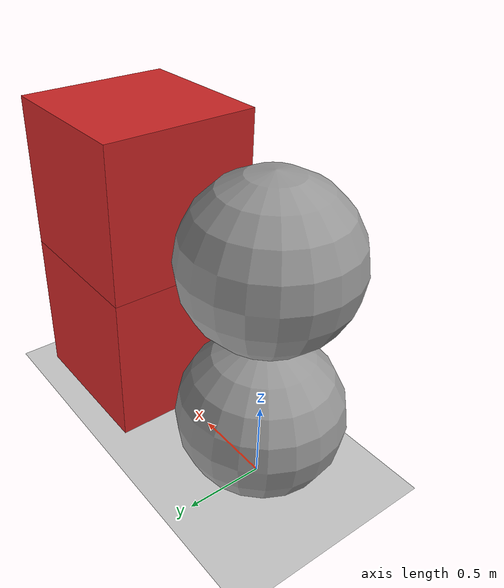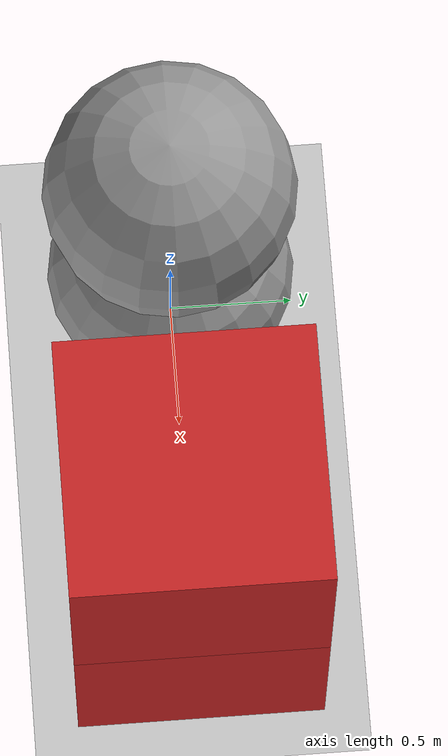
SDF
<?xml version="1.0" ?>
<sdf version="1.5">
  <world name="default">
    <physics type="ode">
      <gravity>0 0 -9.8</gravity>
    </physics>
    <include>
      <uri>model://sun</uri>
    </include>

    <include>
      <uri>model://ground_plane</uri>
    </include>

    <model name="model_0">
      <pose>0 0 0.5 0 0 0</pose>
      <link name="link_01">
        <pose>0 0 0 0 0 0</pose>
        <collision name="collision_01">
          <geometry>
            <sphere>
              <radius>0.5</radius>
            </sphere>
          </geometry>
        </collision>
        <visual name="visual_01">
          <geometry>
            <sphere>
              <radius>0.5</radius>
            </sphere>
          </geometry>
          <material>
            <script>
              <uri>file://media/materials/scripts/gazebo.material</uri>
              <name>Gazebo/Grey</name>
            </script>
          </material>
        </visual>
      </link>
      <link name="link_02">
        <pose>0 0 1 0 0 0</pose>
        <collision name="collision_02">
          <geometry>
            <sphere>
              <radius>0.5</radius>
            </sphere>
          </geometry>
        </collision>
        <visual name="visual_02">
          <geometry>
            <sphere>
              <radius>0.5</radius>
            </sphere>
          </geometry>
          <material>
            <script>
              <uri>file://media/materials/scripts/gazebo.material</uri>
              <name>Gazebo/Grey</name>
            </script>
          </material>
        </visual>
      </link>
      <joint name="joint_0" type="revolute">
        <parent>link_01</parent>
        <child>link_02</child>
        <pose>0.0 0.0 0.0 0.0 0.0 0.0</pose>
        <axis>
          <xyz>1.0 0.0 0.0</xyz>
        </axis>
      </joint>

      <model name="model_1">
        <pose>1 0 0.0 0 0 0</pose>
        <link name="link_11">
          <pose>0.25 0 0.0 0 0 0</pose>
          <collision name="collision_11">
            <geometry>
              <box>
                <size>1 1 1</size>
              </box>
            </geometry>
          </collision>
          <visual name="visual_11">
            <geometry>
              <box>
                <size>1 1 1</size>
              </box>
            </geometry>
            <material>
              <script>
                <uri>file://media/materials/scripts/gazebo.material</uri>
                <name>Gazebo/Red</name>
              </script>
            </material>
          </visual>
        </link>
        <link name="link_12">
          <pose>0.25 0 1 0 0 0</pose>
          <collision name="collision_12">
            <geometry>
              <box>
                <size>1 1 1</size>
              </box>
            </geometry>
          </collision>
          <visual name="visual_12">
            <geometry>
              <box>
                <size>1 1 1</size>
              </box>
            </geometry>
            <material>
              <script>
                <uri>file://media/materials/scripts/gazebo.material</uri>
                <name>Gazebo/Red</name>
              </script>
            </material>
          </visual>
        </link>
        <joint name="joint_1" type="revolute">
          <parent>link_11</parent>
          <child>link_12</child>
          <pose>0.0 0.0 0.0 0.0 0.0 0.0</pose>
          <axis>
            <xyz>1.0 0.0 0.0</xyz>
          </axis>
        </joint>
      </model>

      <joint name="joint_01" type="revolute">
        <parent>link_01</parent>
        <child>model_1::link_11</child>
        <pose>0.0 0.0 0.0 0.0 0.0 0.0</pose>
        <axis>
          <xyz>1.0 0.0 0.0</xyz>
        </axis>
      </joint>
    </model>

  </world>
</sdf>
